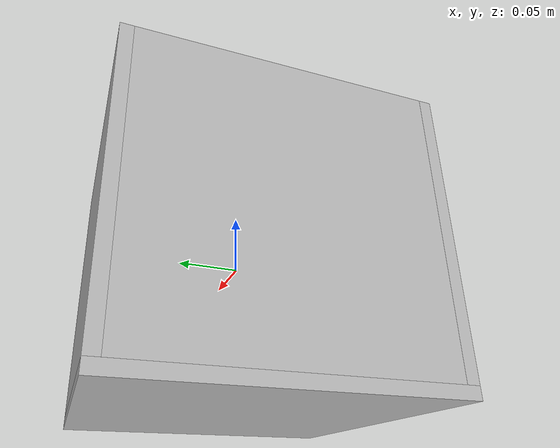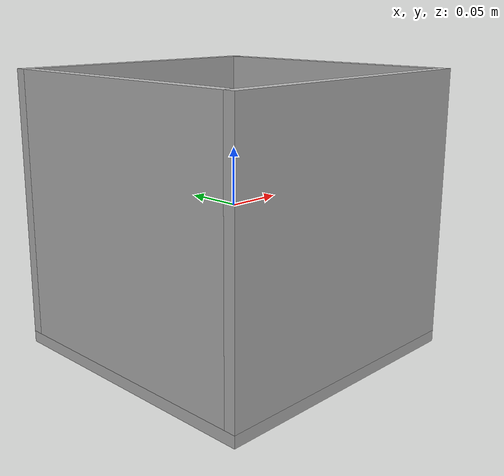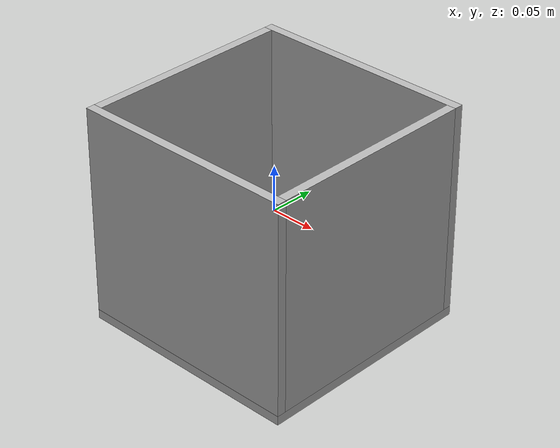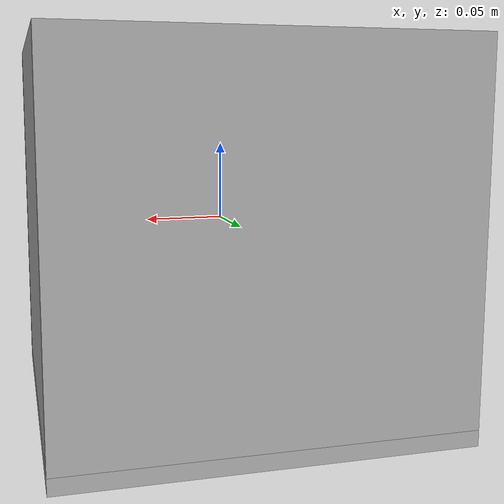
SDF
<?xml version="1.0" ?>
    <sdf version="1.4">
        <model name="my_box">
            <pose>0 0 0 0 0 0</pose> <static>false</static>
            <link name="my_box">
                <gazebo reference = "world">
                    <turnGravityOff>true</turnGravityOff>
                </gazebo>
                <inertial>
                    <pose> 0 0 0 0 0 0 </pose> <mass>0.3</mass>  <inertia> <ixx>0.0005</ixx> <ixy>0.0</ixy> <ixz>0.0</ixz> <iyy>0.0005</iyy> <iyz>0.0</iyz> <izz>0.0005</izz> </inertia>
                </inertial>

                <collision name="collision_bottom">
                    <pose> 0 0 -0.12 0 0 0 </pose>
                    <geometry>
                        <box>
                            <size> 0.25 0.25 0.01 </size>
                        </box>
                    </geometry>
                    <surface>
                        <friction>
                            <ode>
                                <mu>0.025</mu>  <mu2>0.025</mu2>
                            </ode>
                        </friction>
                        <contact>
                            <ode>
                                <kp>1000000</kp>
                                <kd>0.1</kd>
                            </ode>
                        </contact>
                    </surface>
                </collision>

                <collision name="collision_top">
                    <pose> 0 0 0.12 0 0 0 </pose>
                    <geometry>
                        <box>
                            <size> 0.25 0.25 0.01 </size>
                        </box>
                    </geometry>
                    <surface>
                        <friction>
                            <ode>
                                <mu>0.025</mu>  <mu2>0.025</mu2>
                            </ode>
                        </friction>
                    </surface>
                </collision>

                <collision name="collision_front">
                    <pose> 0 -0.12 0 0 0 0 </pose>
                    <geometry>
                        <box>
                            <size> 0.25 0.01 0.23 </size>
                        </box>
                    </geometry>
                    <surface>
                        <friction>
                            <ode>
                                <mu>0.025</mu>  <mu2>0.025</mu2>
                            </ode>
                        </friction>
                    </surface>
                </collision>

                <collision name="collision_back">
                    <pose> 0 0.12 0 0 0 0 </pose>
                    <geometry>
                        <box>
                            <size> 0.25 0.01 0.23 </size>
                        </box>
                    </geometry>
                    <surface>
                        <friction>
                            <ode>
                                <mu>0.025</mu>  <mu2>0.025</mu2>
                            </ode>
                        </friction>
                    </surface>
                </collision>

                <collision name="collision_left">
                    <pose> -0.12 0 0 0 0 0 </pose>
                    <geometry>
                        <box>
                            <size> 0.01 0.23 0.23 </size>
                        </box>
                    </geometry>
                    <surface>
                        <friction>
                            <ode>
                                <mu>0.025</mu>  <mu2>0.025</mu2>
                            </ode>
                        </friction>
                    </surface>
                </collision>

                <collision name="collision_right">
                    <pose> 0.12 0 0 0 0 0 </pose>
                    <geometry>
                        <box>
                            <size> 0.01 0.23 0.23 </size>
                        </box>
                    </geometry>
                    <surface>
                        <friction>
                            <ode>
                                <mu>0.025</mu>  <mu2>0.025</mu2>
                            </ode>
                        </friction>
                    </surface>
                </collision>

                <visual name="visual_bottom">
                    <pose> 0 0 -0.12 0 0 0 </pose>
                    <geometry>
                        <box>
                            <size> 0.25 0.25 0.01 </size>
                        </box>
                    </geometry>
                </visual>

                <visual name="visual_front">
                    <pose> 0 -0.12 0 0 0 0 </pose>
                    <geometry>
                        <box>
                            <size> 0.25 0.01 0.23 </size>
                        </box>
                    </geometry>
                </visual>

                <visual name="visual_back">
                    <pose> 0 0.12 0 0 0 0 </pose>
                    <geometry>
                        <box>
                            <size> 0.25 0.01 0.23 </size>
                        </box>
                    </geometry>
                </visual>

                <visual name="visual_left">
                    <pose> -0.12 0 0 0 0 0 </pose>
                    <geometry>
                        <box>
                            <size> 0.01 0.23 0.23 </size>
                        </box>
                    </geometry>
                </visual>

                <visual name="visual_right">
                    <pose> 0.12 0 0 0 0 0 </pose>
                    <geometry>
                        <box>
                            <size> 0.01 0.23 0.23 </size>
                        </box>
                    </geometry>
                </visual>

            </link>
        </model>
    </sdf>
